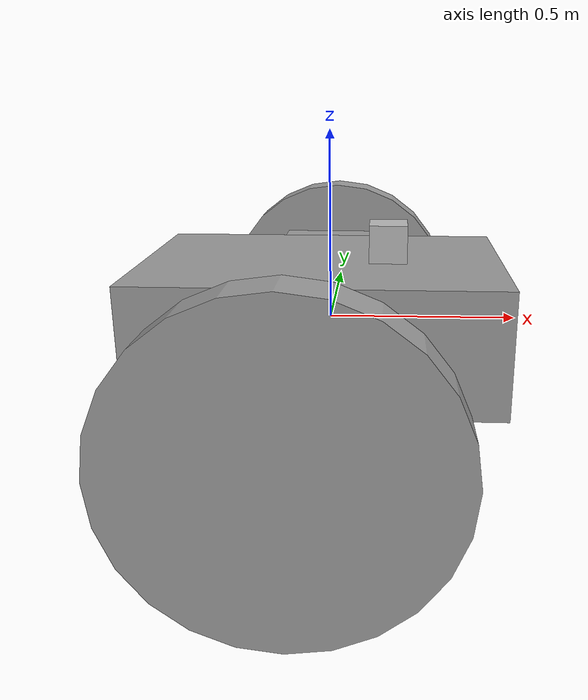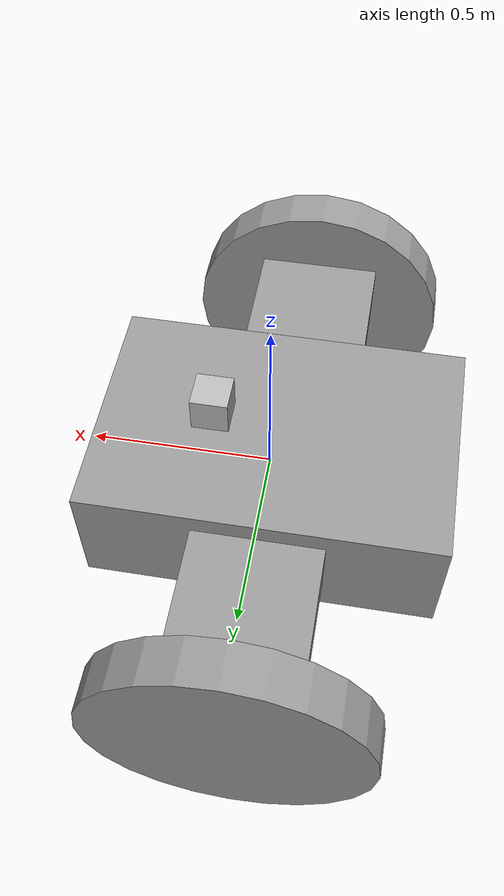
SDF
<?xml version='1.0'?>
<sdf version='1.7'>
  <model name='2wheelonly'>
    <link name='link_0'>
      <inertial>
        <mass>0.203023</mass>
        <inertia>
          <ixx>0.0089413</ixx>
          <ixy>0</ixy>
          <ixz>0</ixz>
          <iyy>0.0172179</iyy>
          <iyz>0</iyz>
          <izz>0.0225166</izz>
        </inertia>
        <pose>0 0 0 0 -0 0</pose>
      </inertial>
      <pose>-0.021737 0.001397 -0.00393 0 -0 0</pose>
      <visual name='visual'>
        <pose>0 0 0 0 -0 0</pose>
        <geometry>
          <box>
            <size>0.953959 0.648721 0.328102</size>
          </box>
        </geometry>
        <material>
          <lighting>1</lighting>
          <script>
            <uri>file://media/materials/scripts/gazebo.material</uri>
            <name>Gazebo/Grey</name>
          </script>
          <shader type='pixel'/>
          <emissive>0 0 0 1</emissive>
        </material>
        <transparency>0</transparency>
        <cast_shadows>1</cast_shadows>
      </visual>
      <collision name='collision'>
        <laser_retro>0</laser_retro>
        <max_contacts>10</max_contacts>
        <pose>0 0 0 0 -0 0</pose>
        <geometry>
          <box>
            <size>0.953959 0.648721 0.328102</size>
          </box>
        </geometry>
        <surface>
          <friction>
            <ode>
              <mu>1</mu>
              <mu2>1</mu2>
              <fdir1>0 0 0</fdir1>
              <slip1>0</slip1>
              <slip2>0</slip2>
            </ode>
            <torsional>
              <coefficient>1</coefficient>
              <patch_radius>0</patch_radius>
              <surface_radius>0</surface_radius>
              <use_patch_radius>1</use_patch_radius>
              <ode>
                <slip>0</slip>
              </ode>
            </torsional>
          </friction>
          <bounce>
            <restitution_coefficient>0</restitution_coefficient>
            <threshold>1e+06</threshold>
          </bounce>
          <contact>
            <collide_without_contact>0</collide_without_contact>
            <collide_without_contact_bitmask>1</collide_without_contact_bitmask>
            <collide_bitmask>1</collide_bitmask>
            <ode>
              <soft_cfm>0</soft_cfm>
              <soft_erp>0.2</soft_erp>
              <kp>1e+13</kp>
              <kd>1</kd>
              <max_vel>0.01</max_vel>
              <min_depth>0</min_depth>
            </ode>
            <bullet>
              <split_impulse>1</split_impulse>
              <split_impulse_penetration_threshold>-0.01</split_impulse_penetration_threshold>
              <soft_cfm>0</soft_cfm>
              <soft_erp>0.2</soft_erp>
              <kp>1e+13</kp>
              <kd>1</kd>
            </bullet>
          </contact>
        </surface>
      </collision>
    </link>
    <link name='link_1'>
      <inertial>
        <mass>0.0683992</mass>
        <inertia>
          <ixx>0.00252135</ixx>
          <ixy>0</ixy>
          <ixz>0</ixz>
          <iyy>0.00252135</iyy>
          <iyz>0</iyz>
          <izz>0.00487898</izz>
        </inertia>
        <pose>0 0 0 0 -0 0</pose>
      </inertial>
      <pose>-0.044355 -0.735235 -0.095829 1.5708 -0 0</pose>
      <gravity>1</gravity>
      <self_collide>0</self_collide>
      <kinematic>0</kinematic>
      <enable_wind>0</enable_wind>
      <visual name='visual'>
        <pose>0 0 0 0 -0 0</pose>
        <geometry>
          <cylinder>
            <radius>0.377706</radius>
            <length>0.11984</length>
          </cylinder>
        </geometry>
        <material>
          <lighting>1</lighting>
          <script>
            <uri>file://media/materials/scripts/gazebo.material</uri>
            <name>Gazebo/Grey</name>
          </script>
          <shader type='pixel'>
            <normal_map>__default__</normal_map>
          </shader>
          <ambient>0.3 0.3 0.3 1</ambient>
          <diffuse>0.7 0.7 0.7 1</diffuse>
          <specular>0.01 0.01 0.01 1</specular>
          <emissive>0 0 0 1</emissive>
        </material>
        <transparency>0</transparency>
        <cast_shadows>1</cast_shadows>
      </visual>
      <collision name='collision'>
        <laser_retro>0</laser_retro>
        <max_contacts>10</max_contacts>
        <pose>0 0 0 0 -0 0</pose>
        <geometry>
          <cylinder>
            <radius>0.377706</radius>
            <length>0.11984</length>
          </cylinder>
        </geometry>
        <surface>
          <friction>
            <ode>
              <mu>1</mu>
              <mu2>1</mu2>
              <fdir1>0 0 0</fdir1>
              <slip1>0</slip1>
              <slip2>0</slip2>
            </ode>
            <torsional>
              <coefficient>1</coefficient>
              <patch_radius>0</patch_radius>
              <surface_radius>0</surface_radius>
              <use_patch_radius>1</use_patch_radius>
              <ode>
                <slip>0</slip>
              </ode>
            </torsional>
          </friction>
          <bounce>
            <restitution_coefficient>0</restitution_coefficient>
            <threshold>1e+06</threshold>
          </bounce>
          <contact>
            <collide_without_contact>0</collide_without_contact>
            <collide_without_contact_bitmask>1</collide_without_contact_bitmask>
            <collide_bitmask>1</collide_bitmask>
            <ode>
              <soft_cfm>0</soft_cfm>
              <soft_erp>0.2</soft_erp>
              <kp>1e+13</kp>
              <kd>1</kd>
              <max_vel>0.01</max_vel>
              <min_depth>0</min_depth>
            </ode>
            <bullet>
              <split_impulse>1</split_impulse>
              <split_impulse_penetration_threshold>-0.01</split_impulse_penetration_threshold>
              <soft_cfm>0</soft_cfm>
              <soft_erp>0.2</soft_erp>
              <kp>1e+13</kp>
              <kd>1</kd>
            </bullet>
          </contact>
        </surface>
      </collision>
    </link>
    <link name='link_1_clone'>
      <inertial>
        <mass>0.0683992</mass>
        <inertia>
          <ixx>0.00252135</ixx>
          <ixy>0</ixy>
          <ixz>0</ixz>
          <iyy>0.00252135</iyy>
          <iyz>0</iyz>
          <izz>0.00487898</izz>
        </inertia>
        <pose>0 0 0 0 -0 0</pose>
      </inertial>
      <pose>-0.021737 0.738028 -0.111076 1.5708 -0 0</pose>
      <gravity>1</gravity>
      <self_collide>0</self_collide>
      <kinematic>0</kinematic>
      <enable_wind>0</enable_wind>
      <visual name='visual'>
        <pose>0 0 0 0 -0 0</pose>
        <geometry>
          <cylinder>
            <radius>0.377706</radius>
            <length>0.11984</length>
          </cylinder>
        </geometry>
        <material>
          <lighting>1</lighting>
          <script>
            <uri>file://media/materials/scripts/gazebo.material</uri>
            <name>Gazebo/Grey</name>
          </script>
          <shader type='pixel'>
            <normal_map>__default__</normal_map>
          </shader>
          <ambient>0.3 0.3 0.3 1</ambient>
          <diffuse>0.7 0.7 0.7 1</diffuse>
          <specular>0.01 0.01 0.01 1</specular>
          <emissive>0 0 0 1</emissive>
        </material>
        <transparency>0</transparency>
        <cast_shadows>1</cast_shadows>
      </visual>
      <collision name='collision'>
        <laser_retro>0</laser_retro>
        <max_contacts>10</max_contacts>
        <pose>0 0 0 0 -0 0</pose>
        <geometry>
          <cylinder>
            <radius>0.377706</radius>
            <length>0.11984</length>
          </cylinder>
        </geometry>
        <surface>
          <friction>
            <ode>
              <mu>1</mu>
              <mu2>1</mu2>
              <fdir1>0 0 0</fdir1>
              <slip1>0</slip1>
              <slip2>0</slip2>
            </ode>
            <torsional>
              <coefficient>1</coefficient>
              <patch_radius>0</patch_radius>
              <surface_radius>0</surface_radius>
              <use_patch_radius>1</use_patch_radius>
              <ode>
                <slip>0</slip>
              </ode>
            </torsional>
          </friction>
          <bounce>
            <restitution_coefficient>0</restitution_coefficient>
            <threshold>1e+06</threshold>
          </bounce>
          <contact>
            <collide_without_contact>0</collide_without_contact>
            <collide_without_contact_bitmask>1</collide_without_contact_bitmask>
            <collide_bitmask>1</collide_bitmask>
            <ode>
              <soft_cfm>0</soft_cfm>
              <soft_erp>0.2</soft_erp>
              <kp>1e+13</kp>
              <kd>1</kd>
              <max_vel>0.01</max_vel>
              <min_depth>0</min_depth>
            </ode>
            <bullet>
              <split_impulse>1</split_impulse>
              <split_impulse_penetration_threshold>-0.01</split_impulse_penetration_threshold>
              <soft_cfm>0</soft_cfm>
              <soft_erp>0.2</soft_erp>
              <kp>1e+13</kp>
              <kd>1</kd>
            </bullet>
          </contact>
        </surface>
      </collision>
    </link>
    <link name='link_2'>
      <inertial>
        <mass>0.0205515</mass>
        <inertia>
          <ixx>0.00026137</ixx>
          <ixy>0</ixy>
          <ixz>0</ixz>
          <iyy>0.00025361</iyy>
          <iyz>0</iyz>
          <izz>0.000417488</izz>
        </inertia>
        <pose>0 0 0 0 -0 0</pose>
      </inertial>
      <pose>-0.044355 -0.499139 0.02808 0 -0 0</pose>
      <visual name='visual'>
        <pose>0 0 0 0 -0 0</pose>
        <geometry>
          <box>
            <size>0.345861 0.35235 0.16871</size>
          </box>
        </geometry>
        <material>
          <lighting>1</lighting>
          <script>
            <uri>file://media/materials/scripts/gazebo.material</uri>
            <name>Gazebo/Grey</name>
          </script>
          <shader type='pixel'/>
          <emissive>0 0 0 1</emissive>
        </material>
        <transparency>0</transparency>
        <cast_shadows>1</cast_shadows>
      </visual>
      <collision name='collision'>
        <laser_retro>0</laser_retro>
        <max_contacts>10</max_contacts>
        <pose>0 0 0 0 -0 0</pose>
        <geometry>
          <box>
            <size>0.345861 0.35235 0.16871</size>
          </box>
        </geometry>
        <surface>
          <friction>
            <ode>
              <mu>1</mu>
              <mu2>1</mu2>
              <fdir1>0 0 0</fdir1>
              <slip1>0</slip1>
              <slip2>0</slip2>
            </ode>
            <torsional>
              <coefficient>1</coefficient>
              <patch_radius>0</patch_radius>
              <surface_radius>0</surface_radius>
              <use_patch_radius>1</use_patch_radius>
              <ode>
                <slip>0</slip>
              </ode>
            </torsional>
          </friction>
          <bounce>
            <restitution_coefficient>0</restitution_coefficient>
            <threshold>1e+06</threshold>
          </bounce>
          <contact>
            <collide_without_contact>0</collide_without_contact>
            <collide_without_contact_bitmask>1</collide_without_contact_bitmask>
            <collide_bitmask>1</collide_bitmask>
            <ode>
              <soft_cfm>0</soft_cfm>
              <soft_erp>0.2</soft_erp>
              <kp>1e+13</kp>
              <kd>1</kd>
              <max_vel>0.01</max_vel>
              <min_depth>0</min_depth>
            </ode>
            <bullet>
              <split_impulse>1</split_impulse>
              <split_impulse_penetration_threshold>-0.01</split_impulse_penetration_threshold>
              <soft_cfm>0</soft_cfm>
              <soft_erp>0.2</soft_erp>
              <kp>1e+13</kp>
              <kd>1</kd>
            </bullet>
          </contact>
        </surface>
      </collision>
    </link>
    <link name='link_2_clone'>
      <inertial>
        <mass>0.0205515</mass>
        <inertia>
          <ixx>0.00026137</ixx>
          <ixy>0</ixy>
          <ixz>0</ixz>
          <iyy>0.00025361</iyy>
          <iyz>0</iyz>
          <izz>0.000417488</izz>
        </inertia>
        <pose>0 0 0 0 -0 0</pose>
      </inertial>
      <pose>-0.021737 0.501932 0.022635 0 -0 0</pose>
      <visual name='visual'>
        <pose>0 0 0 0 -0 0</pose>
        <geometry>
          <box>
            <size>0.345861 0.35235 0.16871</size>
          </box>
        </geometry>
        <material>
          <lighting>1</lighting>
          <script>
            <uri>file://media/materials/scripts/gazebo.material</uri>
            <name>Gazebo/Grey</name>
          </script>
          <shader type='pixel'/>
          <emissive>0 0 0 1</emissive>
        </material>
        <transparency>0</transparency>
        <cast_shadows>1</cast_shadows>
      </visual>
      <collision name='collision'>
        <laser_retro>0</laser_retro>
        <max_contacts>10</max_contacts>
        <pose>0 0 0 0 -0 0</pose>
        <geometry>
          <box>
            <size>0.345861 0.35235 0.16871</size>
          </box>
        </geometry>
        <surface>
          <friction>
            <ode>
              <mu>1</mu>
              <mu2>1</mu2>
              <fdir1>0 0 0</fdir1>
              <slip1>0</slip1>
              <slip2>0</slip2>
            </ode>
            <torsional>
              <coefficient>1</coefficient>
              <patch_radius>0</patch_radius>
              <surface_radius>0</surface_radius>
              <use_patch_radius>1</use_patch_radius>
              <ode>
                <slip>0</slip>
              </ode>
            </torsional>
          </friction>
          <bounce>
            <restitution_coefficient>0</restitution_coefficient>
            <threshold>1e+06</threshold>
          </bounce>
          <contact>
            <collide_without_contact>0</collide_without_contact>
            <collide_without_contact_bitmask>1</collide_without_contact_bitmask>
            <collide_bitmask>1</collide_bitmask>
            <ode>
              <soft_cfm>0</soft_cfm>
              <soft_erp>0.2</soft_erp>
              <kp>1e+13</kp>
              <kd>1</kd>
              <max_vel>0.01</max_vel>
              <min_depth>0</min_depth>
            </ode>
            <bullet>
              <split_impulse>1</split_impulse>
              <split_impulse_penetration_threshold>-0.01</split_impulse_penetration_threshold>
              <soft_cfm>0</soft_cfm>
              <soft_erp>0.2</soft_erp>
              <kp>1e+13</kp>
              <kd>1</kd>
            </bullet>
          </contact>
        </surface>
      </collision>
    </link>
    <model name='depth_camera'>
      <link name='link'>
        <pose>0 0 0.05 0 -0 0</pose>
        <inertial>
          <mass>0.1</mass>
          <inertia>
            <ixx>0.000166667</ixx>
            <iyy>0.000166667</iyy>
            <izz>0.000166667</izz>
            <ixy>0</ixy>
            <ixz>0</ixz>
            <iyz>0</iyz>
          </inertia>
        </inertial>
        <collision name='collision'>
          <geometry>
            <box>
              <size>0.1 0.1 0.1</size>
            </box>
          </geometry>
        </collision>
        <visual name='visual'>
          <geometry>
            <box>
              <size>0.1 0.1 0.1</size>
            </box>
          </geometry>
        </visual>
        <sensor name='camera' type='depth'>
          <camera>
            <horizontal_fov>1.047</horizontal_fov>
            <image>
              <width>320</width>
              <height>240</height>
            </image>
            <clip>
              <near>0.1</near>
              <far>100</far>
            </clip>
          </camera>
          <always_on>1</always_on>
          <update_rate>30</update_rate>
          <visualize>1</visualize>
        </sensor>
      </link>
      <pose>0.153923 -0.006989 0.16012 0 -0 0</pose>
    </model>
    <joint name='link_0_JOINT_0' type='fixed'>
      <parent>link_0</parent>
      <child>link_2</child>
      <pose>0 0 0 0 -0 0</pose>
      <physics>
        <ode>
          <limit>
            <cfm>0</cfm>
            <erp>0.2</erp>
          </limit>
          <suspension>
            <cfm>0</cfm>
            <erp>0.2</erp>
          </suspension>
        </ode>
      </physics>
    </joint>
    <joint name='link_0_JOINT_1' type='fixed'>
      <parent>link_0</parent>
      <child>link_2_clone</child>
      <pose>0 0 0 0 -0 0</pose>
      <physics>
        <ode>
          <limit>
            <cfm>0</cfm>
            <erp>0.2</erp>
          </limit>
          <suspension>
            <cfm>0</cfm>
            <erp>0.2</erp>
          </suspension>
        </ode>
      </physics>
    </joint>
    <joint name='link_0_JOINT_4' type='fixed'>
      <parent>link_0</parent>
      <child>depth_camera::link</child>
      <pose>0 0 0 0 -0 0</pose>
      <physics>
        <ode>
          <limit>
            <cfm>0</cfm>
            <erp>0.2</erp>
          </limit>
          <suspension>
            <cfm>0</cfm>
            <erp>0.2</erp>
          </suspension>
        </ode>
      </physics>
    </joint>
    <joint name='link_2_JOINT_2' type='revolute'>
      <parent>link_2</parent>
      <child>link_1</child>
      <pose>0 0 0 0 -0 0</pose>
      <axis>
        <xyz>0 0 1</xyz>
        <limit>
          <lower>-1.79769e+308</lower>
          <upper>1.79769e+308</upper>
          <effort>-1</effort>
          <velocity>-1</velocity>
        </limit>
        <dynamics>
          <spring_reference>0</spring_reference>
          <spring_stiffness>0</spring_stiffness>
          <damping>0</damping>
        </dynamics>
      </axis>
      <physics>
        <ode>
          <limit>
            <cfm>0</cfm>
            <erp>0.2</erp>
          </limit>
          <suspension>
            <cfm>0</cfm>
            <erp>0.2</erp>
          </suspension>
        </ode>
      </physics>
    </joint>
    <joint name='link_2_clone_JOINT_3' type='revolute'>
      <parent>link_2_clone</parent>
      <child>link_1_clone</child>
      <pose>0 0 0 0 -0 0</pose>
      <axis>
        <xyz>0 0 1</xyz>
        <limit>
          <lower>-1.79769e+308</lower>
          <upper>1.79769e+308</upper>
          <effort>-1</effort>
          <velocity>-1</velocity>
        </limit>
        <dynamics>
          <spring_reference>0</spring_reference>
          <spring_stiffness>0</spring_stiffness>
          <damping>0</damping>
        </dynamics>
      </axis>
      <physics>
        <ode>
          <limit>
            <cfm>0</cfm>
            <erp>0.2</erp>
          </limit>
          <suspension>
            <cfm>0</cfm>
            <erp>0.2</erp>
          </suspension>
        </ode>
      </physics>
    </joint>
    <static>0</static>
    <allow_auto_disable>1</allow_auto_disable>
    <plugin name='follower' filename='libFollowerPlugin.so'/>
  </model>
</sdf>
